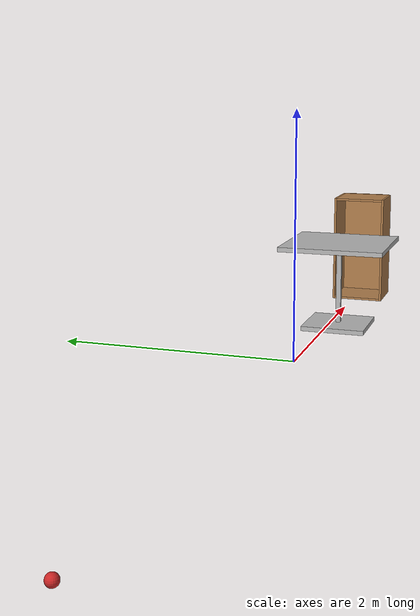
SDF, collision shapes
<?xml version='1.0'?>
<sdf version='1.6'>
  <model name='imported'>
    <model name='cabinet'>
      <static>1</static>
      <link name='cabinet_bottom_plate'>
        <inertial>
          <pose frame=''>0 0 -1 0 -0 0</pose>
          <inertia>
            <ixx>2.05</ixx>
            <ixy>0</ixy>
            <ixz>0</ixz>
            <iyy>2.05</iyy>
            <iyz>0</iyz>
            <izz>2.05</izz>
          </inertia>
          <mass>25</mass>
        </inertial>
        <collision name='cabinet_bottom_plate_geom'>
          <pose frame=''>0 0 0.01 0 -0 0</pose>
          <geometry>
            <box>
              <size>0.45 0.45 0.02</size>
            </box>
          </geometry>
        </collision>
        <visual name='cabinet_bottom_plate_geom_visual'>
          <pose frame=''>0 0 0.01 0 -0 0</pose>
          <geometry>
            <box>
              <size>0.45 0.45 0.02</size>
            </box>
          </geometry>
          <material>
            <script>
              <uri>file://media/materials/scripts/gazebo.material</uri>
              <name>Gazebo/Wood</name>
            </script>
          </material>
        </visual>
        <collision name='cabinet_bottom_plate_geom_cabinet_back_plate'>
          <pose frame=''>0.235 0 0.51 0 -0 0</pose>
          <geometry>
            <box>
              <size>0.02 0.45 1.02</size>
            </box>
          </geometry>
        </collision>
        <visual name='cabinet_bottom_plate_geom_cabinet_back_plate_visual'>
          <pose frame=''>0.235 0 0.51 0 -0 0</pose>
          <geometry>
            <box>
              <size>0.02 0.45 1.02</size>
            </box>
          </geometry>
          <material>
            <script>
              <uri>file://media/materials/scripts/gazebo.material</uri>
              <name>Gazebo/Wood</name>
            </script>
          </material>
        </visual>
        <collision name='cabinet_bottom_plate_geom_cabinet_left_plate'>
          <pose frame=''>0 0.235 0.51 0 -0 0</pose>
          <geometry>
            <box>
              <size>0.45 0.02 1.02</size>
            </box>
          </geometry>
        </collision>
        <visual name='cabinet_bottom_plate_geom_cabinet_left_plate_visual'>
          <pose frame=''>0 0.235 0.51 0 -0 0</pose>
          <geometry>
            <box>
              <size>0.45 0.02 1.02</size>
            </box>
          </geometry>
          <material>
            <script>
              <uri>file://media/materials/scripts/gazebo.material</uri>
              <name>Gazebo/Wood</name>
            </script>
          </material>
        </visual>
        <collision name='cabinet_bottom_plate_geom_cabinet_middle_plate'>
          <pose frame=''>0 0 0.51 0 -0 0</pose>
          <geometry>
            <box>
              <size>0.45 0.45 0.02</size>
            </box>
          </geometry>
        </collision>
        <visual name='cabinet_bottom_plate_geom_cabinet_middle_plate_visual'>
          <pose frame=''>0 0 0.51 0 -0 0</pose>
          <geometry>
            <box>
              <size>0.45 0.45 0.02</size>
            </box>
          </geometry>
          <material>
            <script>
              <uri>file://media/materials/scripts/gazebo.material</uri>
              <name>Gazebo/Wood</name>
            </script>
          </material>
        </visual>
        <collision name='cabinet_bottom_plate_geom_cabinet_right_plate'>
          <pose frame=''>0 -0.235 0.51 0 -0 0</pose>
          <geometry>
            <box>
              <size>0.45 0.02 1.02</size>
            </box>
          </geometry>
        </collision>
        <visual name='cabinet_bottom_plate_geom_cabinet_right_plate_visual'>
          <pose frame=''>0 -0.235 0.51 0 -0 0</pose>
          <geometry>
            <box>
              <size>0.45 0.02 1.02</size>
            </box>
          </geometry>
          <material>
            <script>
              <uri>file://media/materials/scripts/gazebo.material</uri>
              <name>Gazebo/Wood</name>
            </script>
          </material>
        </visual>
        <collision name='cabinet_bottom_plate_geom_cabinet_top_plate'>
          <pose frame=''>0 0 1.01 0 -0 0</pose>
          <geometry>
            <box>
              <size>0.45 0.45 0.02</size>
            </box>
          </geometry>
        </collision>
        <visual name='cabinet_bottom_plate_geom_cabinet_top_plate_visual'>
          <pose frame=''>0 0 1.01 0 -0 0</pose>
          <geometry>
            <box>
              <size>0.45 0.45 0.02</size>
            </box>
          </geometry>
          <material>
            <script>
              <uri>file://media/materials/scripts/gazebo.material</uri>
              <name>Gazebo/Wood</name>
            </script>
          </material>
        </visual>
      </link>
      <pose frame=''>2.58303 -0.047962 0 0 -0 0</pose>
    </model>
    <model name='cafe_table'>
      <static>1</static>
      <link name='link'>
        <collision name='surface'>
          <pose frame=''>0 0 0.755 0 -0 0</pose>
          <geometry>
            <box>
              <size>0.913 0.913 0.04</size>
            </box>
          </geometry>
        </collision>
        <collision name='column'>
          <pose frame=''>0 0 0.37 0 -0 0</pose>
          <geometry>
            <box>
              <size>0.042 0.042 0.74</size>
            </box>
          </geometry>
        </collision>
        <collision name='base'>
          <pose frame=''>0 0 0.02 0 -0 0</pose>
          <geometry>
            <box>
              <size>0.56 0.56 0.04</size>
            </box>
          </geometry>
        </collision>
        <visual name='visual'>
          <geometry>
            <mesh>
              <uri>model://cafe_table/meshes/cafe_table.dae</uri>
            </mesh>
          </geometry>
        </visual>
      </link>
      <pose frame=''>1.25094 -0.093216 0 0 -0 0</pose>
    </model>
    <model name='cricket_ball'>
      <link name='link'>
        <pose frame=''>0 0 0.0375 0 -0 0</pose>
        <inertial>
          <mass>0.1467</mass>
          <inertia>
            <ixx>8.25187e-05</ixx>
            <ixy>0</ixy>
            <ixz>0</ixz>
            <iyy>8.25187e-05</iyy>
            <iyz>0</iyz>
            <izz>8.25187e-05</izz>
          </inertia>
        </inertial>
        <collision name='collision'>
          <geometry>
            <sphere>
              <radius>0.0375</radius>
            </sphere>
          </geometry>
          <surface>
            <contact>
              <poissons_ratio>0.347</poissons_ratio>
              <elastic_modulus>8.8e+09</elastic_modulus>
              <ode>
                <kp>100000</kp>
                <kd>100</kd>
                <max_vel>100</max_vel>
                <min_depth>0.001</min_depth>
              </ode>
            </contact>
            <friction>
              <torsional>
                <coefficient>1</coefficient>
                <use_patch_radius>0</use_patch_radius>
                <surface_radius>0.01</surface_radius>
              </torsional>
            </friction>
          </surface>
        </collision>
        <visual name='visual'>
          <geometry>
            <sphere>
              <radius>0.0375</radius>
            </sphere>
          </geometry>
          <material>
            <script>
              <uri>file://media/materials/scripts/gazebo.material</uri>
              <name>Gazebo/Red</name>
            </script>
          </material>
        </visual>
        <velocity_decay>
          <linear>0</linear>
          <angular>0.005</angular>
        </velocity_decay>
      </link>
      <pose frame=''>-3.83396 0.141173 0 0 -0 0</pose>
    </model>
    <static>0</static>
    <allow_auto_disable>1</allow_auto_disable>
  </model>
</sdf>
